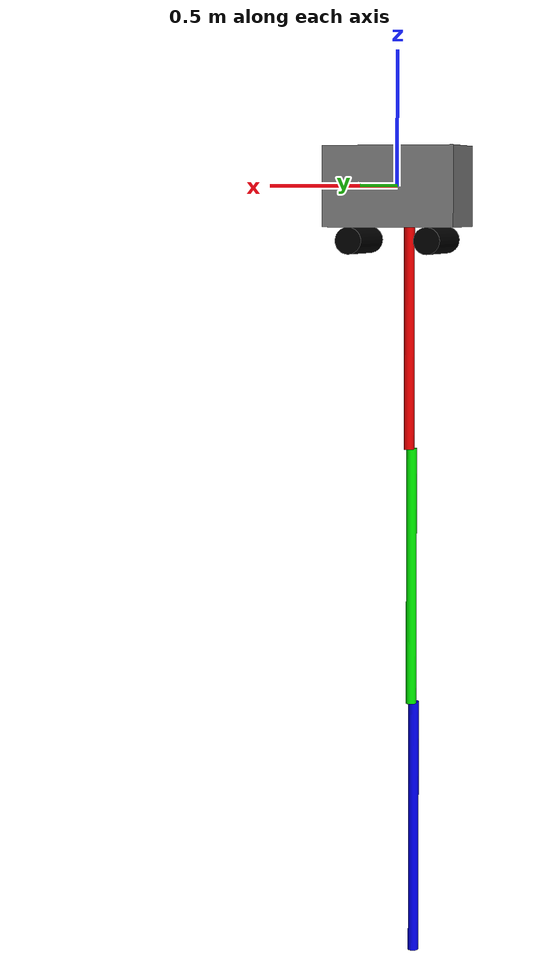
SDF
<?xml version="1.0" ?>
<sdf version="1.7">
  <model name="cart_triple_pendulum">

    <link name="cart">
      <pose>0 0 0 0 0 0</pose>
      <inertial>
        <mass>1</mass>
      </inertial>
      <visual name="cart_body">
        <geometry>
          <box>
            <size>0.5 0.3 0.3</size>
          </box>
        </geometry>
        <material>
          <diffuse>0.5 0.5 0.5 1</diffuse>
        </material>
      </visual>
      <visual name="cart_wheel1">
        <pose>-0.15 0 -0.2 1.57 0 0</pose>
        <geometry>
          <cylinder>
            <radius>0.05</radius>
            <length>0.3</length>
          </cylinder>
        </geometry>
        <material>
          <diffuse>0 0 0 1</diffuse>
        </material>
      </visual>
      <visual name="cart_wheel2">
        <pose>0.15 0 -0.2 1.57 0 0</pose>
        <geometry>
          <cylinder>
            <radius>0.05</radius>
            <length>0.3</length>
          </cylinder>
        </geometry>
        <material>
          <diffuse>0 0 0 1</diffuse>
        </material>
      </visual>
    </link>

    <link name="pendulum1">
      <pose>0 -0.17 0 0 0 0</pose>
      <inertial>
        <pose>0 0 -0.5 0 0 0</pose>
        <mass>1</mass>
        <inertia>
          <ixx>0.08333333333</ixx>
          <iyy>0.08333333333</iyy>
          <izz>1e-5</izz>
        </inertia>
      </inertial>
      <visual name="pendulum1_rod">
        <pose>0 0 -0.5 0 0 0</pose>
        <geometry>
          <cylinder>
            <radius>0.02</radius>
            <length>1</length>
          </cylinder>
        </geometry>
        <material>
          <diffuse>1 0 0 1</diffuse>
        </material>
      </visual>
    </link>

    <link name="pendulum2">
      <pose>0 -0.21 -1 0 0 0</pose>
      <inertial>
        <pose>0 0 -0.5 0 0 0</pose>
        <mass>1</mass>
        <inertia>
          <ixx>0.08333333333</ixx>
          <iyy>0.08333333333</iyy>
          <izz>1e-5</izz>
        </inertia>
      </inertial>
      <visual name="pendulum2_rod">
        <pose>0 0 -0.5 0 0 0</pose>
        <geometry>
          <cylinder>
            <radius>0.02</radius>
            <length>1</length>
          </cylinder>
        </geometry>
        <material>
          <diffuse>0 1 0 1</diffuse>
        </material>
      </visual>
    </link>

    <link name="pendulum3">
      <pose>0 -0.25 -2 0 0 0</pose>
      <inertial>
        <pose>0 0 -0.5 0 0 0</pose>
        <mass>1</mass>
        <inertia>
          <ixx>0.08333333333</ixx>
          <iyy>0.08333333333</iyy>
          <izz>1e-5</izz>
        </inertia>
      </inertial>
      <visual name="pendulum3_rod">
        <pose>0 0 -0.5 0 0 0</pose>
        <geometry>
          <cylinder>
            <radius>0.02</radius>
            <length>1</length>
          </cylinder>
        </geometry>
        <material>
          <diffuse>0 0 1 1</diffuse>
        </material>
      </visual>
    </link>

    <joint name="linear" type="prismatic">
      <parent>world</parent>
      <child>cart</child>
      <axis>
        <xyz>1 0 0</xyz>
      </axis>
    </joint>

    <joint name="joint1" type="continuous">
      <parent>cart</parent>
      <child>pendulum1</child>
      <axis>
        <xyz>0 -1 0</xyz>
        <limit>
          <effort>0</effort> <!-- Unactuated -->
        </limit>
      </axis>
    </joint>

    <joint name="joint2" type="continuous">
      <parent>pendulum1</parent>
      <child>pendulum2</child>
      <axis>
        <xyz>0 -1 0</xyz>
        <limit>
          <effort>0</effort> <!-- Unactuated -->
        </limit>
      </axis>
    </joint>

    <joint name="joint3" type="continuous">
      <parent>pendulum2</parent>
      <child>pendulum3</child>
      <axis>
        <xyz>0 -1 0</xyz>
        <limit>
          <effort>0</effort> <!-- Unactuated -->
        </limit>
      </axis>
    </joint>

  </model>
</sdf>
